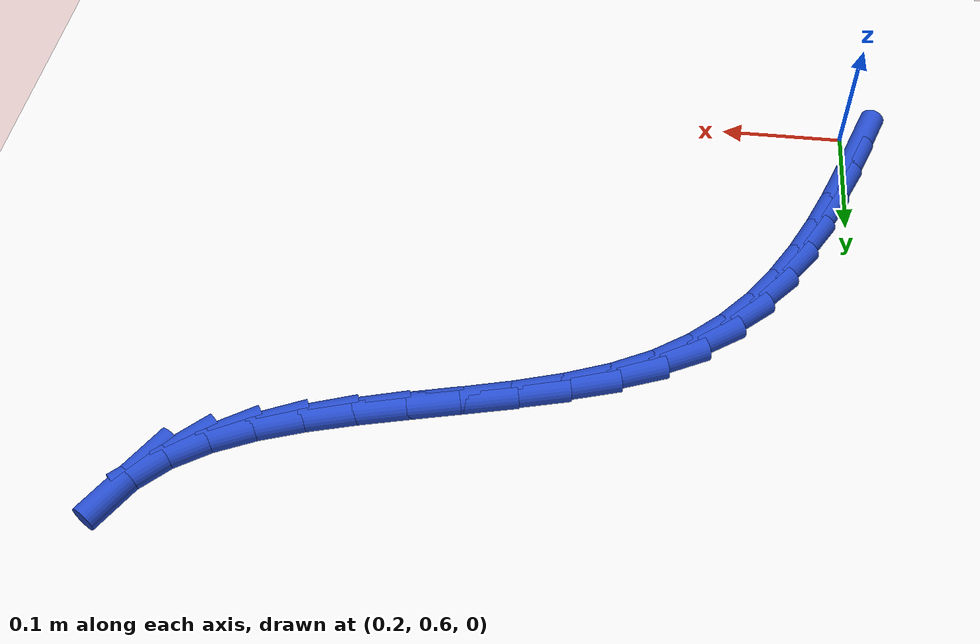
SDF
<sdf version="1.6">
 <world name="default">
  <model name="ground_plane">
   <static>1</static>
   <link name="link">
    <collision name="collision">
     <geometry><plane><normal>0 0 1</normal><size>100 100</size></plane></geometry>
     <surface><friction><ode><mu>100</mu><mu2>50</mu2></ode></friction></surface>
    </collision>
    <visual name="visual">
     <cast_shadows>0</cast_shadows>
     <geometry><plane><normal>0 0 1</normal><size>100 100</size></plane></geometry>
     <material>
      <script><uri>file://media/materials/scripts/gazebo.material</uri><name>Gazebo/WhiteGlow</name></script>
     </material>
    </visual>
   </link>
  </model>
  <model name="line">
   <link name="link_20">
    <pose>0.1872117008335328 0.6177412503872985 0.01 0 1.57 1.214409447849647</pose>
    <collision name="collision">
     <geometry><cylinder><radius>0.01</radius><length>0.08</length></cylinder></geometry>
    </collision>
    <visual name="visual">
     <material>
      <script><name>Gazebo/Blue</name><uri>file://media/materials/scripts/gazebo.material</uri></script>
     </material>
     <geometry><cylinder><radius>0.01</radius><length>0.08</length></cylinder></geometry>
    </visual>
   </link>
   <link name="link_21">
    <pose>0.1990587042172802 0.6495637894111141 0.01 0 1.57 1.1902800236213078</pose>
    <collision name="collision">
     <geometry><cylinder><radius>0.01</radius><length>0.08</length></cylinder></geometry>
    </collision>
    <visual name="visual">
     <material>
      <script><name>Gazebo/Blue</name><uri>file://media/materials/scripts/gazebo.material</uri></script>
     </material>
     <geometry><cylinder><radius>0.01</radius><length>0.08</length></cylinder></geometry>
    </visual>
   </link>
   <link name="link_22">
    <pose>0.21155944514616312 0.6808147421530261 0.01 0 1.57 1.152022798556756</pose>
    <collision name="collision">
     <geometry><cylinder><radius>0.01</radius><length>0.08</length></cylinder></geometry>
    </collision>
    <visual name="visual">
     <material>
      <script><name>Gazebo/Blue</name><uri>file://media/materials/scripts/gazebo.material</uri></script>
     </material>
     <geometry><cylinder><radius>0.01</radius><length>0.08</length></cylinder></geometry>
    </visual>
   </link>
   <link name="link_23">
    <pose>0.22507420882751505 0.7111780183327046 0.01 0 1.57 1.0986985694848181</pose>
    <collision name="collision">
     <geometry><cylinder><radius>0.01</radius><length>0.08</length></cylinder></geometry>
    </collision>
    <visual name="visual">
     <material>
      <script><name>Gazebo/Blue</name><uri>file://media/materials/scripts/gazebo.material</uri></script>
     </material>
     <geometry><cylinder><radius>0.01</radius><length>0.08</length></cylinder></geometry>
    </visual>
   </link>
   <link name="link_24">
    <pose>0.2399632804686689 0.7403375276698183 0.01 0 1.57 1.0293167525447422</pose>
    <collision name="collision">
     <geometry><cylinder><radius>0.01</radius><length>0.08</length></cylinder></geometry>
    </collision>
    <visual name="visual">
     <material>
      <script><name>Gazebo/Blue</name><uri>file://media/materials/scripts/gazebo.material</uri></script>
     </material>
     <geometry><cylinder><radius>0.01</radius><length>0.08</length></cylinder></geometry>
    </visual>
   </link>
   <link name="link_25">
    <pose>0.25658694527695786 0.767977179884037 0.01 0 1.57 0.9432123937851087</pose>
    <collision name="collision">
     <geometry><cylinder><radius>0.01</radius><length>0.08</length></cylinder></geometry>
    </collision>
    <visual name="visual">
     <material>
      <script><name>Gazebo/Blue</name><uri>file://media/materials/scripts/gazebo.material</uri></script>
     </material>
     <geometry><cylinder><radius>0.01</radius><length>0.08</length></cylinder></geometry>
    </visual>
   </link>
   <link name="link_26">
    <pose>0.27530548845971486 0.7937808846950298 0.01 0 1.57 0.8406222613339868</pose>
    <collision name="collision">
     <geometry><cylinder><radius>0.01</radius><length>0.08</length></cylinder></geometry>
    </collision>
    <visual name="visual">
     <material>
      <script><name>Gazebo/Blue</name><uri>file://media/materials/scripts/gazebo.material</uri></script>
     </material>
     <geometry><cylinder><radius>0.01</radius><length>0.08</length></cylinder></geometry>
    </visual>
   </link>
   <link name="link_27">
    <pose>0.2964791952242731 0.8174325518224657 0.01 0 1.57 0.7233691613524007</pose>
    <collision name="collision">
     <geometry><cylinder><radius>0.01</radius><length>0.08</length></cylinder></geometry>
    </collision>
    <visual name="visual">
     <material>
      <script><name>Gazebo/Blue</name><uri>file://media/materials/scripts/gazebo.material</uri></script>
     </material>
     <geometry><cylinder><radius>0.01</radius><length>0.08</length></cylinder></geometry>
    </visual>
   </link>
   <link name="link_28">
    <pose>0.32046835077796565 0.8386160909860143 0.01 0 1.57 0.595341717369687</pose>
    <collision name="collision">
     <geometry><cylinder><radius>0.01</radius><length>0.08</length></cylinder></geometry>
    </collision>
    <visual name="visual">
     <material>
      <script><name>Gazebo/Blue</name><uri>file://media/materials/scripts/gazebo.material</uri></script>
     </material>
     <geometry><cylinder><radius>0.01</radius><length>0.08</length></cylinder></geometry>
    </visual>
   </link>
   <link name="link_29">
    <pose>0.3476332403281257 0.8570154119053449 0.01 0 1.57 0.4645721290135875</pose>
    <collision name="collision">
     <geometry><cylinder><radius>0.01</radius><length>0.08</length></cylinder></geometry>
    </collision>
    <visual name="visual">
     <material>
      <script><name>Gazebo/Blue</name><uri>file://media/materials/scripts/gazebo.material</uri></script>
     </material>
     <geometry><cylinder><radius>0.01</radius><length>0.08</length></cylinder></geometry>
    </visual>
   </link>
   <link name="link_30">
    <pose>0.37826789799194477 0.8723681600629022 0.01 0 1.57 0.3590655584564902</pose>
    <collision name="collision">
     <geometry><cylinder><radius>0.01</radius><length>0.08</length></cylinder></geometry>
    </collision>
    <visual name="visual">
     <material>
      <script><name>Gazebo/Blue</name><uri>file://media/materials/scripts/gazebo.material</uri></script>
     </material>
     <geometry><cylinder><radius>0.01</radius><length>0.08</length></cylinder></geometry>
    </visual>
   </link>
   <link name="link_31">
    <pose>0.4119354476577591 0.8850048167508436 0.01 0 1.57 0.28827498622024916</pose>
    <collision name="collision">
     <geometry><cylinder><radius>0.01</radius><length>0.08</length></cylinder></geometry>
    </collision>
    <visual name="visual">
     <material>
      <script><name>Gazebo/Blue</name><uri>file://media/materials/scripts/gazebo.material</uri></script>
     </material>
     <geometry><cylinder><radius>0.01</radius><length>0.08</length></cylinder></geometry>
    </visual>
   </link>
   <link name="link_32">
    <pose>0.4477454542661981 0.8956237415251675 0.01 0 1.57 0.2460261230389155</pose>
    <collision name="collision">
     <geometry><cylinder><radius>0.01</radius><length>0.08</length></cylinder></geometry>
    </collision>
    <visual name="visual">
     <material>
      <script><name>Gazebo/Blue</name><uri>file://media/materials/scripts/gazebo.material</uri></script>
     </material>
     <geometry><cylinder><radius>0.01</radius><length>0.08</length></cylinder></geometry>
    </visual>
   </link>
   <link name="link_33">
    <pose>0.4848006923347947 0.9049288016031641 0.01 0 1.57 0.22841125643875623</pose>
    <collision name="collision">
     <geometry><cylinder><radius>0.01</radius><length>0.08</length></cylinder></geometry>
    </collision>
    <visual name="visual">
     <material>
      <script><name>Gazebo/Blue</name><uri>file://media/materials/scripts/gazebo.material</uri></script>
     </material>
     <geometry><cylinder><radius>0.01</radius><length>0.08</length></cylinder></geometry>
    </visual>
   </link>
   <link name="link_34">
    <pose>0.5222039363810819 0.913623864202123 0.01 0 1.57 0.23410687317102608</pose>
    <collision name="collision">
     <geometry><cylinder><radius>0.01</radius><length>0.08</length></cylinder></geometry>
    </collision>
    <visual name="visual">
     <material>
      <script><name>Gazebo/Blue</name><uri>file://media/materials/scripts/gazebo.material</uri></script>
     </material>
     <geometry><cylinder><radius>0.01</radius><length>0.08</length></cylinder></geometry>
    </visual>
   </link>
   <link name="link_35">
    <pose>0.5590579609225923 0.9224127965393341 0.01 0 1.57 0.26441250881149453</pose>
    <collision name="collision">
     <geometry><cylinder><radius>0.01</radius><length>0.08</length></cylinder></geometry>
    </collision>
    <visual name="visual">
     <material>
      <script><name>Gazebo/Blue</name><uri>file://media/materials/scripts/gazebo.material</uri></script>
     </material>
     <geometry><cylinder><radius>0.01</radius><length>0.08</length></cylinder></geometry>
    </visual>
   </link>
   <link name="link_36">
    <pose>0.5944655404768591 0.9319994658320871 0.01 0 1.57 0.3235723814605655</pose>
    <collision name="collision">
     <geometry><cylinder><radius>0.01</radius><length>0.08</length></cylinder></geometry>
    </collision>
    <visual name="visual">
     <material>
      <script><name>Gazebo/Blue</name><uri>file://media/materials/scripts/gazebo.material</uri></script>
     </material>
     <geometry><cylinder><radius>0.01</radius><length>0.08</length></cylinder></geometry>
    </visual>
   </link>
   <link name="link_37">
    <pose>0.6275294495614145 0.9430877392976718 0.01 0 1.57 0.41931783271356454</pose>
    <collision name="collision">
     <geometry><cylinder><radius>0.01</radius><length>0.08</length></cylinder></geometry>
    </collision>
    <visual name="visual">
     <material>
      <script><name>Gazebo/Blue</name><uri>file://media/materials/scripts/gazebo.material</uri></script>
     </material>
     <geometry><cylinder><radius>0.01</radius><length>0.08</length></cylinder></geometry>
    </visual>
   </link>
   <link name="link_38">
    <pose>0.6573524626937927 0.9563814841533786 0.01 0 1.57 0.562788582438893</pose>
    <collision name="collision">
     <geometry><cylinder><radius>0.01</radius><length>0.08</length></cylinder></geometry>
    </collision>
    <visual name="visual">
     <material>
      <script><name>Gazebo/Blue</name><uri>file://media/materials/scripts/gazebo.material</uri></script>
     </material>
     <geometry><cylinder><radius>0.01</radius><length>0.08</length></cylinder></geometry>
    </visual>
   </link>
   <link name="link_39">
    <pose>0.6830373543915254 0.9725845676164968 0.01 0 1.57 0.7648094922013549</pose>
    <collision name="collision">
     <geometry><cylinder><radius>0.01</radius><length>0.08</length></cylinder></geometry>
    </collision>
    <visual name="visual">
     <material>
      <script><name>Gazebo/Blue</name><uri>file://media/materials/scripts/gazebo.material</uri></script>
     </material>
     <geometry><cylinder><radius>0.01</radius><length>0.08</length></cylinder></geometry>
    </visual>
   </link>
   <link name="link_40">
    <pose>0.7036868991721461 0.9924008569043166 0.01 0 1.57 1.0231885554680273</pose>
    <collision name="collision">
     <geometry><cylinder><radius>0.01</radius><length>0.08</length></cylinder></geometry>
    </collision>
    <visual name="visual">
     <material>
      <script><name>Gazebo/Blue</name><uri>file://media/materials/scripts/gazebo.material</uri></script>
     </material>
     <geometry><cylinder><radius>0.01</radius><length>0.08</length></cylinder></geometry>
    </visual>
   </link>
  </model>
 </world>
</sdf>
